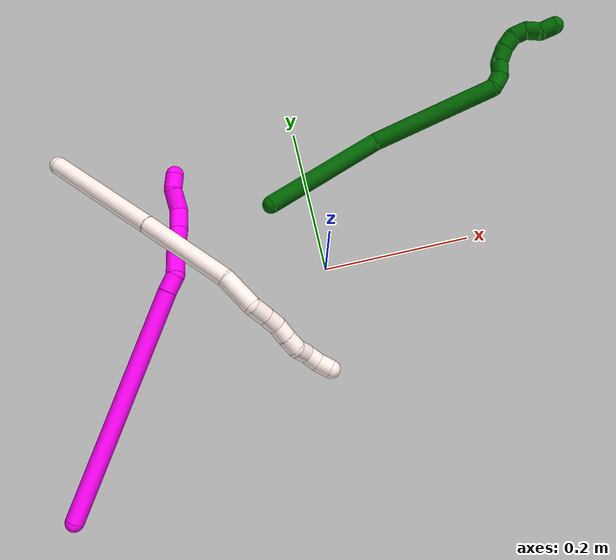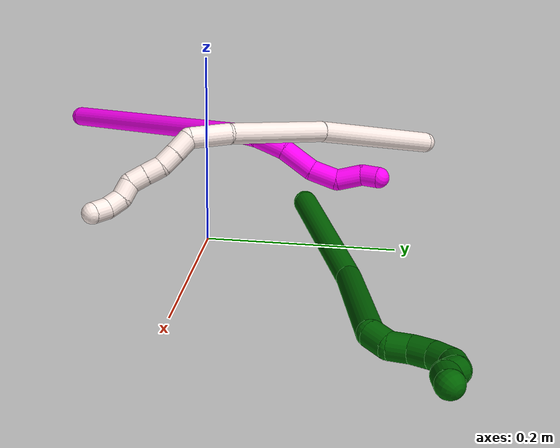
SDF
<sdf version="1.7">
 <world name="default">
  <model name="6">
   <static>0</static>
   <link name="6">
    <collision name="collision-cylinder-e_1_1_4">
     <pose>0.023811 0.020303 0.080894 -0.245907 0.278091 -0.034585</pose>
     <geometry><cylinder><radius>0.0125</radius><length>0.173471</length></cylinder></geometry>
     <surface>
      <friction><ode><mu>1.16</mu><mu2>1.16</mu2><slip1>0</slip1><slip2>0</slip2></ode></friction>
      <contact><ode><kp>1e+06</kp><kd>1</kd><max_vel>0</max_vel><min_depth>0.001</min_depth></ode></contact>
     </surface>
    </collision>
    <visual name="visual-cylinder-e_1_1_4">
     <pose>0.023811 0.020303 0.080894 -0.245907 0.278091 -0.034585</pose>
     <geometry><cylinder><radius>0.0125</radius><length>0.173471</length></cylinder></geometry>
     <material><ambient>0 0.392157 0.003922 1</ambient></material>
    </visual>
    <collision name="collision-cylinder-e_2_4_5">
     <pose>0.097485 0.061543 0.234028 -0.282084 0.585445 -0.085531</pose>
     <geometry><cylinder><radius>0.0125</radius><length>0.18048</length></cylinder></geometry>
     <surface>
      <friction><ode><mu>1.16</mu><mu2>1.16</mu2><slip1>0</slip1><slip2>0</slip2></ode></friction>
      <contact><ode><kp>1e+06</kp><kd>1</kd><max_vel>0</max_vel><min_depth>0.001</min_depth></ode></contact>
     </surface>
    </collision>
    <visual name="visual-cylinder-e_2_4_5">
     <pose>0.097485 0.061543 0.234028 -0.282084 0.585445 -0.085531</pose>
     <geometry><cylinder><radius>0.0125</radius><length>0.18048</length></cylinder></geometry>
     <material><ambient>0 0.392157 0.003922 1</ambient></material>
    </visual>
    <collision name="collision-cylinder-e_3_5_6">
     <pose>0.147194 0.081242 0.317117 0.113418 -0.014224 -0.000808</pose>
     <geometry><cylinder><radius>0.0125</radius><length>0.021842</length></cylinder></geometry>
     <surface>
      <friction><ode><mu>1.16</mu><mu2>1.16</mu2><slip1>0</slip1><slip2>0</slip2></ode></friction>
      <contact><ode><kp>1e+06</kp><kd>1</kd><max_vel>0</max_vel><min_depth>0.001</min_depth></ode></contact>
     </surface>
    </collision>
    <visual name="visual-cylinder-e_3_5_6">
     <pose>0.147194 0.081242 0.317117 0.113418 -0.014224 -0.000808</pose>
     <geometry><cylinder><radius>0.0125</radius><length>0.021842</length></cylinder></geometry>
     <material><ambient>0 0.392157 0.003922 1</ambient></material>
    </visual>
    <collision name="collision-cylinder-e_4_6_7">
     <pose>0.145032 0.074219 0.335958 0.626827 -0.200643 -0.065223</pose>
     <geometry><cylinder><radius>0.0125</radius><length>0.020138</length></cylinder></geometry>
     <surface>
      <friction><ode><mu>1.16</mu><mu2>1.16</mu2><slip1>0</slip1><slip2>0</slip2></ode></friction>
      <contact><ode><kp>1e+06</kp><kd>1</kd><max_vel>0</max_vel><min_depth>0.001</min_depth></ode></contact>
     </surface>
    </collision>
    <visual name="visual-cylinder-e_4_6_7">
     <pose>0.145032 0.074219 0.335958 0.626827 -0.200643 -0.065223</pose>
     <geometry><cylinder><radius>0.0125</radius><length>0.020138</length></cylinder></geometry>
     <material><ambient>0 0.392157 0.003922 1</ambient></material>
    </visual>
    <collision name="collision-cylinder-e_5_7_8">
     <pose>0.143718 0.064379 0.354074 0.380731 0.063447 0.01223</pose>
     <geometry><cylinder><radius>0.0125</radius><length>0.021856</length></cylinder></geometry>
     <surface>
      <friction><ode><mu>1.16</mu><mu2>1.16</mu2><slip1>0</slip1><slip2>0</slip2></ode></friction>
      <contact><ode><kp>1e+06</kp><kd>1</kd><max_vel>0</max_vel><min_depth>0.001</min_depth></ode></contact>
     </surface>
    </collision>
    <visual name="visual-cylinder-e_5_7_8">
     <pose>0.143718 0.064379 0.354074 0.380731 0.063447 0.01223</pose>
     <geometry><cylinder><radius>0.0125</radius><length>0.021856</length></cylinder></geometry>
     <material><ambient>0 0.392157 0.003922 1</ambient></material>
    </visual>
    <collision name="collision-cylinder-e_6_8_9">
     <pose>0.146905 0.058362 0.374214 0.193692 0.239737 0.023402</pose>
     <geometry><cylinder><radius>0.0125</radius><length>0.021012</length></cylinder></geometry>
     <surface>
      <friction><ode><mu>1.16</mu><mu2>1.16</mu2><slip1>0</slip1><slip2>0</slip2></ode></friction>
      <contact><ode><kp>1e+06</kp><kd>1</kd><max_vel>0</max_vel><min_depth>0.001</min_depth></ode></contact>
     </surface>
    </collision>
    <visual name="visual-cylinder-e_6_8_9">
     <pose>0.146905 0.058362 0.374214 0.193692 0.239737 0.023402</pose>
     <geometry><cylinder><radius>0.0125</radius><length>0.021012</length></cylinder></geometry>
     <material><ambient>0 0.392157 0.003922 1</ambient></material>
    </visual>
    <collision name="collision-cylinder-e_7_9_10">
     <pose>0.155359 0.058669 0.392088 -0.281392 0.629515 -0.09216</pose>
     <geometry><cylinder><radius>0.0125</radius><length>0.020244</length></cylinder></geometry>
     <surface>
      <friction><ode><mu>1.16</mu><mu2>1.16</mu2><slip1>0</slip1><slip2>0</slip2></ode></friction>
      <contact><ode><kp>1e+06</kp><kd>1</kd><max_vel>0</max_vel><min_depth>0.001</min_depth></ode></contact>
     </surface>
    </collision>
    <visual name="visual-cylinder-e_7_9_10">
     <pose>0.155359 0.058669 0.392088 -0.281392 0.629515 -0.09216</pose>
     <geometry><cylinder><radius>0.0125</radius><length>0.020244</length></cylinder></geometry>
     <material><ambient>0 0.392157 0.003922 1</ambient></material>
    </visual>
    <collision name="collision-cylinder-e_8_10_11">
     <pose>0.169281 0.066567 0.403497 -1.00792 0.87488 -0.504784</pose>
     <geometry><cylinder><radius>0.0125</radius><length>0.020752</length></cylinder></geometry>
     <surface>
      <friction><ode><mu>1.16</mu><mu2>1.16</mu2><slip1>0</slip1><slip2>0</slip2></ode></friction>
      <contact><ode><kp>1e+06</kp><kd>1</kd><max_vel>0</max_vel><min_depth>0.001</min_depth></ode></contact>
     </surface>
    </collision>
    <visual name="visual-cylinder-e_8_10_11">
     <pose>0.169281 0.066567 0.403497 -1.00792 0.87488 -0.504784</pose>
     <geometry><cylinder><radius>0.0125</radius><length>0.020752</length></cylinder></geometry>
     <material><ambient>0 0.392157 0.003922 1</ambient></material>
    </visual>
    <collision name="collision-cylinder-e_9_11_2">
     <pose>0.182895 0.07468 0.415044 -0.301634 0.593532 -0.092877</pose>
     <geometry><cylinder><radius>0.0125</radius><length>0.020207</length></cylinder></geometry>
     <surface>
      <friction><ode><mu>1.16</mu><mu2>1.16</mu2><slip1>0</slip1><slip2>0</slip2></ode></friction>
      <contact><ode><kp>1e+06</kp><kd>1</kd><max_vel>0</max_vel><min_depth>0.001</min_depth></ode></contact>
     </surface>
    </collision>
    <visual name="visual-cylinder-e_9_11_2">
     <pose>0.182895 0.07468 0.415044 -0.301634 0.593532 -0.092877</pose>
     <geometry><cylinder><radius>0.0125</radius><length>0.020207</length></cylinder></geometry>
     <material><ambient>0 0.392157 0.003922 1</ambient></material>
    </visual>
    <collision name="collision-sphere-2">
     <pose>0.188546 0.077169 0.423041 0 -0 0</pose>
     <geometry><sphere><radius>0.0125</radius></sphere></geometry>
     <surface>
      <friction><ode><mu>1.16</mu><mu2>1.16</mu2><slip1>0</slip1><slip2>0</slip2></ode></friction>
      <contact><ode><kp>1e+06</kp><kd>1</kd><max_vel>0</max_vel><min_depth>0.001</min_depth></ode></contact>
     </surface>
    </collision>
    <visual name="visual-sphere-2">
     <pose>0.188546 0.077169 0.423041 0 -0 0</pose>
     <geometry><sphere><radius>0.0125</radius></sphere></geometry>
     <material><ambient>0 0.392157 0.003922 1</ambient></material>
    </visual>
    <collision name="collision-sphere-11">
     <pose>0.177245 0.072192 0.407047 0 -0 0</pose>
     <geometry><sphere><radius>0.0125</radius></sphere></geometry>
     <surface>
      <friction><ode><mu>1.16</mu><mu2>1.16</mu2><slip1>0</slip1><slip2>0</slip2></ode></friction>
      <contact><ode><kp>1e+06</kp><kd>1</kd><max_vel>0</max_vel><min_depth>0.001</min_depth></ode></contact>
     </surface>
    </collision>
    <visual name="visual-sphere-11">
     <pose>0.177245 0.072192 0.407047 0 -0 0</pose>
     <geometry><sphere><radius>0.0125</radius></sphere></geometry>
     <material><ambient>0 0.392157 0.003922 1</ambient></material>
    </visual>
    <collision name="collision-sphere-10">
     <pose>0.161318 0.060941 0.399948 0 -0 0</pose>
     <geometry><sphere><radius>0.0125</radius></sphere></geometry>
     <surface>
      <friction><ode><mu>1.16</mu><mu2>1.16</mu2><slip1>0</slip1><slip2>0</slip2></ode></friction>
      <contact><ode><kp>1e+06</kp><kd>1</kd><max_vel>0</max_vel><min_depth>0.001</min_depth></ode></contact>
     </surface>
    </collision>
    <visual name="visual-sphere-10">
     <pose>0.161318 0.060941 0.399948 0 -0 0</pose>
     <geometry><sphere><radius>0.0125</radius></sphere></geometry>
     <material><ambient>0 0.392157 0.003922 1</ambient></material>
    </visual>
    <collision name="collision-sphere-9">
     <pose>0.1494 0.056397 0.384228 0 -0 0</pose>
     <geometry><sphere><radius>0.0125</radius></sphere></geometry>
     <surface>
      <friction><ode><mu>1.16</mu><mu2>1.16</mu2><slip1>0</slip1><slip2>0</slip2></ode></friction>
      <contact><ode><kp>1e+06</kp><kd>1</kd><max_vel>0</max_vel><min_depth>0.001</min_depth></ode></contact>
     </surface>
    </collision>
    <visual name="visual-sphere-9">
     <pose>0.1494 0.056397 0.384228 0 -0 0</pose>
     <geometry><sphere><radius>0.0125</radius></sphere></geometry>
     <material><ambient>0 0.392157 0.003922 1</ambient></material>
    </visual>
    <collision name="collision-sphere-4">
     <pose>0.047621 0.040607 0.161789 0 -0 0</pose>
     <geometry><sphere><radius>0.0125</radius></sphere></geometry>
     <surface>
      <friction><ode><mu>1.16</mu><mu2>1.16</mu2><slip1>0</slip1><slip2>0</slip2></ode></friction>
      <contact><ode><kp>1e+06</kp><kd>1</kd><max_vel>0</max_vel><min_depth>0.001</min_depth></ode></contact>
     </surface>
    </collision>
    <visual name="visual-sphere-4">
     <pose>0.047621 0.040607 0.161789 0 -0 0</pose>
     <geometry><sphere><radius>0.0125</radius></sphere></geometry>
     <material><ambient>0 0.392157 0.003922 1</ambient></material>
    </visual>
    <collision name="collision-sphere-1">
     <geometry><sphere><radius>0.0125</radius></sphere></geometry>
     <surface>
      <friction><ode><mu>1.16</mu><mu2>1.16</mu2><slip1>0</slip1><slip2>0</slip2></ode></friction>
      <contact><ode><kp>1e+06</kp><kd>1</kd><max_vel>0</max_vel><min_depth>0.001</min_depth></ode></contact>
     </surface>
    </collision>
    <visual name="visual-sphere-1">
     <geometry><sphere><radius>0.0125</radius></sphere></geometry>
     <material><ambient>0 0.392157 0.003922 1</ambient></material>
    </visual>
    <collision name="collision-sphere-8">
     <pose>0.144411 0.060326 0.364199 0 -0 0</pose>
     <geometry><sphere><radius>0.0125</radius></sphere></geometry>
     <surface>
      <friction><ode><mu>1.16</mu><mu2>1.16</mu2><slip1>0</slip1><slip2>0</slip2></ode></friction>
      <contact><ode><kp>1e+06</kp><kd>1</kd><max_vel>0</max_vel><min_depth>0.001</min_depth></ode></contact>
     </surface>
    </collision>
    <visual name="visual-sphere-8">
     <pose>0.144411 0.060326 0.364199 0 -0 0</pose>
     <geometry><sphere><radius>0.0125</radius></sphere></geometry>
     <material><ambient>0 0.392157 0.003922 1</ambient></material>
    </visual>
    <collision name="collision-sphere-5">
     <pose>0.147349 0.082478 0.306267 0 -0 0</pose>
     <geometry><sphere><radius>0.0125</radius></sphere></geometry>
     <surface>
      <friction><ode><mu>1.16</mu><mu2>1.16</mu2><slip1>0</slip1><slip2>0</slip2></ode></friction>
      <contact><ode><kp>1e+06</kp><kd>1</kd><max_vel>0</max_vel><min_depth>0.001</min_depth></ode></contact>
     </surface>
    </collision>
    <visual name="visual-sphere-5">
     <pose>0.147349 0.082478 0.306267 0 -0 0</pose>
     <geometry><sphere><radius>0.0125</radius></sphere></geometry>
     <material><ambient>0 0.392157 0.003922 1</ambient></material>
    </visual>
    <collision name="collision-sphere-6">
     <pose>0.147038 0.080007 0.327967 0 -0 0</pose>
     <geometry><sphere><radius>0.0125</radius></sphere></geometry>
     <surface>
      <friction><ode><mu>1.16</mu><mu2>1.16</mu2><slip1>0</slip1><slip2>0</slip2></ode></friction>
      <contact><ode><kp>1e+06</kp><kd>1</kd><max_vel>0</max_vel><min_depth>0.001</min_depth></ode></contact>
     </surface>
    </collision>
    <visual name="visual-sphere-6">
     <pose>0.147038 0.080007 0.327967 0 -0 0</pose>
     <geometry><sphere><radius>0.0125</radius></sphere></geometry>
     <material><ambient>0 0.392157 0.003922 1</ambient></material>
    </visual>
    <collision name="collision-sphere-7">
     <pose>0.143025 0.068431 0.343949 0 -0 0</pose>
     <geometry><sphere><radius>0.0125</radius></sphere></geometry>
     <surface>
      <friction><ode><mu>1.16</mu><mu2>1.16</mu2><slip1>0</slip1><slip2>0</slip2></ode></friction>
      <contact><ode><kp>1e+06</kp><kd>1</kd><max_vel>0</max_vel><min_depth>0.001</min_depth></ode></contact>
     </surface>
    </collision>
    <visual name="visual-sphere-7">
     <pose>0.143025 0.068431 0.343949 0 -0 0</pose>
     <geometry><sphere><radius>0.0125</radius></sphere></geometry>
     <material><ambient>0 0.392157 0.003922 1</ambient></material>
    </visual>
    <inertial>
     <pose>0.088883 0.049219 0.220521 0 -0 0</pose>
     <mass>0.5</mass>
     <inertia>
      <ixx>0.000811</ixx>
      <ixy>0</ixy>
      <ixz>0</ixz>
      <iyy>0.000877</iyy>
      <iyz>0</iyz>
      <izz>-0.000584</izz>
     </inertia>
    </inertial>
   </link>
   <pose>-0.05386 0.099091 0.028046 -1.88084 -0.918458 -0.599707</pose>
  </model>
  <model name="10">
   <static>0</static>
   <link name="10">
    <collision name="collision-cylinder-e_1_1_4">
     <pose>-0.004729 0.099603 -0.121575 -2.45521 -0.030083 0.084145</pose>
     <geometry><cylinder><radius>0.0125</radius><length>0.314475</length></cylinder></geometry>
     <surface>
      <friction><ode><mu>1.16</mu><mu2>1.16</mu2><slip1>0</slip1><slip2>0</slip2></ode></friction>
      <contact><ode><kp>1e+06</kp><kd>1</kd><max_vel>0</max_vel><min_depth>0.001</min_depth></ode></contact>
     </surface>
    </collision>
    <visual name="visual-cylinder-e_1_1_4">
     <pose>-0.004729 0.099603 -0.121575 -2.45521 -0.030083 0.084145</pose>
     <geometry><cylinder><radius>0.0125</radius><length>0.314475</length></cylinder></geometry>
     <material><ambient>1 0 0.964706 1</ambient></material>
    </visual>
    <collision name="collision-cylinder-e_2_4_5">
     <pose>-0.01067 0.207299 -0.251686 -2.38283 -0.102606 0.25617</pose>
     <geometry><cylinder><radius>0.0125</radius><length>0.023649</length></cylinder></geometry>
     <surface>
      <friction><ode><mu>1.16</mu><mu2>1.16</mu2><slip1>0</slip1><slip2>0</slip2></ode></friction>
      <contact><ode><kp>1e+06</kp><kd>1</kd><max_vel>0</max_vel><min_depth>0.001</min_depth></ode></contact>
     </surface>
    </collision>
    <visual name="visual-cylinder-e_2_4_5">
     <pose>-0.01067 0.207299 -0.251686 -2.38283 -0.102606 0.25617</pose>
     <geometry><cylinder><radius>0.0125</radius><length>0.023649</length></cylinder></geometry>
     <material><ambient>1 0 0.964706 1</ambient></material>
    </visual>
    <collision name="collision-cylinder-e_3_5_6">
     <pose>-0.005616 0.231123 -0.26617 -1.9323 0.356609 -0.510265</pose>
     <geometry><cylinder><radius>0.0125</radius><length>0.035894</length></cylinder></geometry>
     <surface>
      <friction><ode><mu>1.16</mu><mu2>1.16</mu2><slip1>0</slip1><slip2>0</slip2></ode></friction>
      <contact><ode><kp>1e+06</kp><kd>1</kd><max_vel>0</max_vel><min_depth>0.001</min_depth></ode></contact>
     </surface>
    </collision>
    <visual name="visual-cylinder-e_3_5_6">
     <pose>-0.005616 0.231123 -0.26617 -1.9323 0.356609 -0.510265</pose>
     <geometry><cylinder><radius>0.0125</radius><length>0.035894</length></cylinder></geometry>
     <material><ambient>1 0 0.964706 1</ambient></material>
    </visual>
    <collision name="collision-cylinder-e_4_6_7">
     <pose>0.005855 0.266735 -0.275138 -1.72153 0.253333 -0.294163</pose>
     <geometry><cylinder><radius>0.0125</radius><length>0.041544</length></cylinder></geometry>
     <surface>
      <friction><ode><mu>1.16</mu><mu2>1.16</mu2><slip1>0</slip1><slip2>0</slip2></ode></friction>
      <contact><ode><kp>1e+06</kp><kd>1</kd><max_vel>0</max_vel><min_depth>0.001</min_depth></ode></contact>
     </surface>
    </collision>
    <visual name="visual-cylinder-e_4_6_7">
     <pose>0.005855 0.266735 -0.275138 -1.72153 0.253333 -0.294163</pose>
     <geometry><cylinder><radius>0.0125</radius><length>0.041544</length></cylinder></geometry>
     <material><ambient>1 0 0.964706 1</ambient></material>
    </visual>
    <collision name="collision-cylinder-e_5_7_8">
     <pose>0.016858 0.300586 -0.284597 -2.00269 0.36037 -0.554427</pose>
     <geometry><cylinder><radius>0.0125</radius><length>0.032878</length></cylinder></geometry>
     <surface>
      <friction><ode><mu>1.16</mu><mu2>1.16</mu2><slip1>0</slip1><slip2>0</slip2></ode></friction>
      <contact><ode><kp>1e+06</kp><kd>1</kd><max_vel>0</max_vel><min_depth>0.001</min_depth></ode></contact>
     </surface>
    </collision>
    <visual name="visual-cylinder-e_5_7_8">
     <pose>0.016858 0.300586 -0.284597 -2.00269 0.36037 -0.554427</pose>
     <geometry><cylinder><radius>0.0125</radius><length>0.032878</length></cylinder></geometry>
     <material><ambient>1 0 0.964706 1</ambient></material>
    </visual>
    <collision name="collision-cylinder-e_6_8_9">
     <pose>0.031379 0.321203 -0.301654 -2.5823 0.608357 -1.65973</pose>
     <geometry><cylinder><radius>0.0125</radius><length>0.03053</length></cylinder></geometry>
     <surface>
      <friction><ode><mu>1.16</mu><mu2>1.16</mu2><slip1>0</slip1><slip2>0</slip2></ode></friction>
      <contact><ode><kp>1e+06</kp><kd>1</kd><max_vel>0</max_vel><min_depth>0.001</min_depth></ode></contact>
     </surface>
    </collision>
    <visual name="visual-cylinder-e_6_8_9">
     <pose>0.031379 0.321203 -0.301654 -2.5823 0.608357 -1.65973</pose>
     <geometry><cylinder><radius>0.0125</radius><length>0.03053</length></cylinder></geometry>
     <material><ambient>1 0 0.964706 1</ambient></material>
    </visual>
    <collision name="collision-cylinder-e_7_9_2">
     <pose>0.042648 0.335437 -0.319091 -2.30287 0.244424 -0.537679</pose>
     <geometry><cylinder><radius>0.0125</radius><length>0.021029</length></cylinder></geometry>
     <surface>
      <friction><ode><mu>1.16</mu><mu2>1.16</mu2><slip1>0</slip1><slip2>0</slip2></ode></friction>
      <contact><ode><kp>1e+06</kp><kd>1</kd><max_vel>0</max_vel><min_depth>0.001</min_depth></ode></contact>
     </surface>
    </collision>
    <visual name="visual-cylinder-e_7_9_2">
     <pose>0.042648 0.335437 -0.319091 -2.30287 0.244424 -0.537679</pose>
     <geometry><cylinder><radius>0.0125</radius><length>0.021029</length></cylinder></geometry>
     <material><ambient>1 0 0.964706 1</ambient></material>
    </visual>
    <collision name="collision-sphere-2">
     <pose>0.045193 0.343026 -0.32591 0 -0 0</pose>
     <geometry><sphere><radius>0.0125</radius></sphere></geometry>
     <surface>
      <friction><ode><mu>1.16</mu><mu2>1.16</mu2><slip1>0</slip1><slip2>0</slip2></ode></friction>
      <contact><ode><kp>1e+06</kp><kd>1</kd><max_vel>0</max_vel><min_depth>0.001</min_depth></ode></contact>
     </surface>
    </collision>
    <visual name="visual-sphere-2">
     <pose>0.045193 0.343026 -0.32591 0 -0 0</pose>
     <geometry><sphere><radius>0.0125</radius></sphere></geometry>
     <material><ambient>1 0 0.964706 1</ambient></material>
    </visual>
    <collision name="collision-sphere-9">
     <pose>0.040104 0.327849 -0.312272 0 -0 0</pose>
     <geometry><sphere><radius>0.0125</radius></sphere></geometry>
     <surface>
      <friction><ode><mu>1.16</mu><mu2>1.16</mu2><slip1>0</slip1><slip2>0</slip2></ode></friction>
      <contact><ode><kp>1e+06</kp><kd>1</kd><max_vel>0</max_vel><min_depth>0.001</min_depth></ode></contact>
     </surface>
    </collision>
    <visual name="visual-sphere-9">
     <pose>0.040104 0.327849 -0.312272 0 -0 0</pose>
     <geometry><sphere><radius>0.0125</radius></sphere></geometry>
     <material><ambient>1 0 0.964706 1</ambient></material>
    </visual>
    <collision name="collision-sphere-4">
     <pose>-0.009459 0.199206 -0.24315 0 -0 0</pose>
     <geometry><sphere><radius>0.0125</radius></sphere></geometry>
     <surface>
      <friction><ode><mu>1.16</mu><mu2>1.16</mu2><slip1>0</slip1><slip2>0</slip2></ode></friction>
      <contact><ode><kp>1e+06</kp><kd>1</kd><max_vel>0</max_vel><min_depth>0.001</min_depth></ode></contact>
     </surface>
    </collision>
    <visual name="visual-sphere-4">
     <pose>-0.009459 0.199206 -0.24315 0 -0 0</pose>
     <geometry><sphere><radius>0.0125</radius></sphere></geometry>
     <material><ambient>1 0 0.964706 1</ambient></material>
    </visual>
    <collision name="collision-sphere-1">
     <geometry><sphere><radius>0.0125</radius></sphere></geometry>
     <surface>
      <friction><ode><mu>1.16</mu><mu2>1.16</mu2><slip1>0</slip1><slip2>0</slip2></ode></friction>
      <contact><ode><kp>1e+06</kp><kd>1</kd><max_vel>0</max_vel><min_depth>0.001</min_depth></ode></contact>
     </surface>
    </collision>
    <visual name="visual-sphere-1">
     <geometry><sphere><radius>0.0125</radius></sphere></geometry>
     <material><ambient>1 0 0.964706 1</ambient></material>
    </visual>
    <collision name="collision-sphere-8">
     <pose>0.022655 0.314557 -0.291037 0 -0 0</pose>
     <geometry><sphere><radius>0.0125</radius></sphere></geometry>
     <surface>
      <friction><ode><mu>1.16</mu><mu2>1.16</mu2><slip1>0</slip1><slip2>0</slip2></ode></friction>
      <contact><ode><kp>1e+06</kp><kd>1</kd><max_vel>0</max_vel><min_depth>0.001</min_depth></ode></contact>
     </surface>
    </collision>
    <visual name="visual-sphere-8">
     <pose>0.022655 0.314557 -0.291037 0 -0 0</pose>
     <geometry><sphere><radius>0.0125</radius></sphere></geometry>
     <material><ambient>1 0 0.964706 1</ambient></material>
    </visual>
    <collision name="collision-sphere-5">
     <pose>-0.011881 0.215392 -0.260222 0 -0 0</pose>
     <geometry><sphere><radius>0.0125</radius></sphere></geometry>
     <surface>
      <friction><ode><mu>1.16</mu><mu2>1.16</mu2><slip1>0</slip1><slip2>0</slip2></ode></friction>
      <contact><ode><kp>1e+06</kp><kd>1</kd><max_vel>0</max_vel><min_depth>0.001</min_depth></ode></contact>
     </surface>
    </collision>
    <visual name="visual-sphere-5">
     <pose>-0.011881 0.215392 -0.260222 0 -0 0</pose>
     <geometry><sphere><radius>0.0125</radius></sphere></geometry>
     <material><ambient>1 0 0.964706 1</ambient></material>
    </visual>
    <collision name="collision-sphere-6">
     <pose>0.000649 0.246854 -0.272119 0 -0 0</pose>
     <geometry><sphere><radius>0.0125</radius></sphere></geometry>
     <surface>
      <friction><ode><mu>1.16</mu><mu2>1.16</mu2><slip1>0</slip1><slip2>0</slip2></ode></friction>
      <contact><ode><kp>1e+06</kp><kd>1</kd><max_vel>0</max_vel><min_depth>0.001</min_depth></ode></contact>
     </surface>
    </collision>
    <visual name="visual-sphere-6">
     <pose>0.000649 0.246854 -0.272119 0 -0 0</pose>
     <geometry><sphere><radius>0.0125</radius></sphere></geometry>
     <material><ambient>1 0 0.964706 1</ambient></material>
    </visual>
    <collision name="collision-sphere-7">
     <pose>0.011062 0.286615 -0.278158 0 -0 0</pose>
     <geometry><sphere><radius>0.0125</radius></sphere></geometry>
     <surface>
      <friction><ode><mu>1.16</mu><mu2>1.16</mu2><slip1>0</slip1><slip2>0</slip2></ode></friction>
      <contact><ode><kp>1e+06</kp><kd>1</kd><max_vel>0</max_vel><min_depth>0.001</min_depth></ode></contact>
     </surface>
    </collision>
    <visual name="visual-sphere-7">
     <pose>0.011062 0.286615 -0.278158 0 -0 0</pose>
     <geometry><sphere><radius>0.0125</radius></sphere></geometry>
     <material><ambient>1 0 0.964706 1</ambient></material>
    </visual>
    <inertial>
     <pose>0.001422 0.164691 -0.180891 0 -0 0</pose>
     <mass>0.5</mass>
     <inertia>
      <ixx>0.002824</ixx>
      <ixy>0</ixy>
      <ixz>0</ixz>
      <iyy>-0.00177</iyy>
      <iyz>0</iyz>
      <izz>-0.001624</izz>
     </inertia>
    </inertial>
   </link>
   <pose>-0.387738 -0.251552 0.011777 -2.39087 -0.065747 2.58176</pose>
  </model>
  <model name="11">
   <static>0</static>
   <link name="11">
    <collision name="collision-cylinder-e_1_1_4">
     <pose>0.001838 -0.083266 0.017846 1.35966 0.021575 0.017441</pose>
     <geometry><cylinder><radius>0.0125</radius><length>0.170354</length></cylinder></geometry>
     <surface>
      <friction><ode><mu>1.16</mu><mu2>1.16</mu2><slip1>0</slip1><slip2>0</slip2></ode></friction>
      <contact><ode><kp>1e+06</kp><kd>1</kd><max_vel>0</max_vel><min_depth>0.001</min_depth></ode></contact>
     </surface>
    </collision>
    <visual name="visual-cylinder-e_1_1_4">
     <pose>0.001838 -0.083266 0.017846 1.35966 0.021575 0.017441</pose>
     <geometry><cylinder><radius>0.0125</radius><length>0.170354</length></cylinder></geometry>
     <material><ambient>1 0.933333 0.909804 1</ambient></material>
    </visual>
    <collision name="collision-cylinder-e_2_4_5">
     <pose>0.011594 -0.230436 0.051622 1.3265 0.119667 0.093542</pose>
     <geometry><cylinder><radius>0.0125</radius><length>0.132666</length></cylinder></geometry>
     <surface>
      <friction><ode><mu>1.16</mu><mu2>1.16</mu2><slip1>0</slip1><slip2>0</slip2></ode></friction>
      <contact><ode><kp>1e+06</kp><kd>1</kd><max_vel>0</max_vel><min_depth>0.001</min_depth></ode></contact>
     </surface>
    </collision>
    <visual name="visual-cylinder-e_2_4_5">
     <pose>0.011594 -0.230436 0.051622 1.3265 0.119667 0.093542</pose>
     <geometry><cylinder><radius>0.0125</radius><length>0.132666</length></cylinder></geometry>
     <material><ambient>1 0.933333 0.909804 1</ambient></material>
    </visual>
    <collision name="collision-cylinder-e_3_5_6">
     <pose>0.026887 -0.318152 0.069679 1.48171 0.299164 0.273967</pose>
     <geometry><cylinder><radius>0.0125</radius><length>0.050038</length></cylinder></geometry>
     <surface>
      <friction><ode><mu>1.16</mu><mu2>1.16</mu2><slip1>0</slip1><slip2>0</slip2></ode></friction>
      <contact><ode><kp>1e+06</kp><kd>1</kd><max_vel>0</max_vel><min_depth>0.001</min_depth></ode></contact>
     </surface>
    </collision>
    <visual name="visual-cylinder-e_3_5_6">
     <pose>0.026887 -0.318152 0.069679 1.48171 0.299164 0.273967</pose>
     <geometry><cylinder><radius>0.0125</radius><length>0.050038</length></cylinder></geometry>
     <material><ambient>1 0.933333 0.909804 1</ambient></material>
    </visual>
    <collision name="collision-cylinder-e_4_6_7">
     <pose>0.043468 -0.348537 0.076311 0.969848 0.857455 0.472659</pose>
     <geometry><cylinder><radius>0.0125</radius><length>0.024353</length></cylinder></geometry>
     <surface>
      <friction><ode><mu>1.16</mu><mu2>1.16</mu2><slip1>0</slip1><slip2>0</slip2></ode></friction>
      <contact><ode><kp>1e+06</kp><kd>1</kd><max_vel>0</max_vel><min_depth>0.001</min_depth></ode></contact>
     </surface>
    </collision>
    <visual name="visual-cylinder-e_4_6_7">
     <pose>0.043468 -0.348537 0.076311 0.969848 0.857455 0.472659</pose>
     <geometry><cylinder><radius>0.0125</radius><length>0.024353</length></cylinder></geometry>
     <material><ambient>1 0.933333 0.909804 1</ambient></material>
    </visual>
    <collision name="collision-cylinder-e_5_7_8">
     <pose>0.060783 -0.361376 0.084532 1.0356 0.838677 0.497361</pose>
     <geometry><cylinder><radius>0.0125</radius><length>0.0218</length></cylinder></geometry>
     <surface>
      <friction><ode><mu>1.16</mu><mu2>1.16</mu2><slip1>0</slip1><slip2>0</slip2></ode></friction>
      <contact><ode><kp>1e+06</kp><kd>1</kd><max_vel>0</max_vel><min_depth>0.001</min_depth></ode></contact>
     </surface>
    </collision>
    <visual name="visual-cylinder-e_5_7_8">
     <pose>0.060783 -0.361376 0.084532 1.0356 0.838677 0.497361</pose>
     <geometry><cylinder><radius>0.0125</radius><length>0.0218</length></cylinder></geometry>
     <material><ambient>1 0.933333 0.909804 1</ambient></material>
    </visual>
    <collision name="collision-cylinder-e_6_8_9">
     <pose>0.075544 -0.37545 0.089384 1.42633 0.700708 0.612345</pose>
     <geometry><cylinder><radius>0.0125</radius><length>0.020641</length></cylinder></geometry>
     <surface>
      <friction><ode><mu>1.16</mu><mu2>1.16</mu2><slip1>0</slip1><slip2>0</slip2></ode></friction>
      <contact><ode><kp>1e+06</kp><kd>1</kd><max_vel>0</max_vel><min_depth>0.001</min_depth></ode></contact>
     </surface>
    </collision>
    <visual name="visual-cylinder-e_6_8_9">
     <pose>0.075544 -0.37545 0.089384 1.42633 0.700708 0.612345</pose>
     <geometry><cylinder><radius>0.0125</radius><length>0.020641</length></cylinder></geometry>
     <material><ambient>1 0.933333 0.909804 1</ambient></material>
    </visual>
    <collision name="collision-cylinder-e_7_9_10">
     <pose>0.088623 -0.39078 0.092187 1.35272 0.695006 0.565851</pose>
     <geometry><cylinder><radius>0.0125</radius><length>0.020065</length></cylinder></geometry>
     <surface>
      <friction><ode><mu>1.16</mu><mu2>1.16</mu2><slip1>0</slip1><slip2>0</slip2></ode></friction>
      <contact><ode><kp>1e+06</kp><kd>1</kd><max_vel>0</max_vel><min_depth>0.001</min_depth></ode></contact>
     </surface>
    </collision>
    <visual name="visual-cylinder-e_7_9_10">
     <pose>0.088623 -0.39078 0.092187 1.35272 0.695006 0.565851</pose>
     <geometry><cylinder><radius>0.0125</radius><length>0.020065</length></cylinder></geometry>
     <material><ambient>1 0.933333 0.909804 1</ambient></material>
    </visual>
    <collision name="collision-cylinder-e_8_10_11">
     <pose>0.103163 -0.401628 0.098734 0.598143 0.941701 0.311352</pose>
     <geometry><cylinder><radius>0.0125</radius><length>0.020073</length></cylinder></geometry>
     <surface>
      <friction><ode><mu>1.16</mu><mu2>1.16</mu2><slip1>0</slip1><slip2>0</slip2></ode></friction>
      <contact><ode><kp>1e+06</kp><kd>1</kd><max_vel>0</max_vel><min_depth>0.001</min_depth></ode></contact>
     </surface>
    </collision>
    <visual name="visual-cylinder-e_8_10_11">
     <pose>0.103163 -0.401628 0.098734 0.598143 0.941701 0.311352</pose>
     <geometry><cylinder><radius>0.0125</radius><length>0.020073</length></cylinder></geometry>
     <material><ambient>1 0.933333 0.909804 1</ambient></material>
    </visual>
    <collision name="collision-cylinder-e_9_11_12">
     <pose>0.117194 -0.412235 0.107085 1.12605 0.632793 0.407548</pose>
     <geometry><cylinder><radius>0.0125</radius><length>0.020006</length></cylinder></geometry>
     <surface>
      <friction><ode><mu>1.16</mu><mu2>1.16</mu2><slip1>0</slip1><slip2>0</slip2></ode></friction>
      <contact><ode><kp>1e+06</kp><kd>1</kd><max_vel>0</max_vel><min_depth>0.001</min_depth></ode></contact>
     </surface>
    </collision>
    <visual name="visual-cylinder-e_9_11_12">
     <pose>0.117194 -0.412235 0.107085 1.12605 0.632793 0.407548</pose>
     <geometry><cylinder><radius>0.0125</radius><length>0.020006</length></cylinder></geometry>
     <material><ambient>1 0.933333 0.909804 1</ambient></material>
    </visual>
    <collision name="collision-cylinder-e_10_12_2">
     <pose>0.125551 -0.428279 0.114714 1.12762 0.246545 0.156359</pose>
     <geometry><cylinder><radius>0.0125</radius><length>0.020003</length></cylinder></geometry>
     <surface>
      <friction><ode><mu>1.16</mu><mu2>1.16</mu2><slip1>0</slip1><slip2>0</slip2></ode></friction>
      <contact><ode><kp>1e+06</kp><kd>1</kd><max_vel>0</max_vel><min_depth>0.001</min_depth></ode></contact>
     </surface>
    </collision>
    <visual name="visual-cylinder-e_10_12_2">
     <pose>0.125551 -0.428279 0.114714 1.12762 0.246545 0.156359</pose>
     <geometry><cylinder><radius>0.0125</radius><length>0.020003</length></cylinder></geometry>
     <material><ambient>1 0.933333 0.909804 1</ambient></material>
    </visual>
    <collision name="collision-sphere-2">
     <pose>0.127991 -0.437041 0.118874 0 -0 0</pose>
     <geometry><sphere><radius>0.0125</radius></sphere></geometry>
     <surface>
      <friction><ode><mu>1.16</mu><mu2>1.16</mu2><slip1>0</slip1><slip2>0</slip2></ode></friction>
      <contact><ode><kp>1e+06</kp><kd>1</kd><max_vel>0</max_vel><min_depth>0.001</min_depth></ode></contact>
     </surface>
    </collision>
    <visual name="visual-sphere-2">
     <pose>0.127991 -0.437041 0.118874 0 -0 0</pose>
     <geometry><sphere><radius>0.0125</radius></sphere></geometry>
     <material><ambient>1 0.933333 0.909804 1</ambient></material>
    </visual>
    <collision name="collision-sphere-12">
     <pose>0.12311 -0.419517 0.110555 0 -0 0</pose>
     <geometry><sphere><radius>0.0125</radius></sphere></geometry>
     <surface>
      <friction><ode><mu>1.16</mu><mu2>1.16</mu2><slip1>0</slip1><slip2>0</slip2></ode></friction>
      <contact><ode><kp>1e+06</kp><kd>1</kd><max_vel>0</max_vel><min_depth>0.001</min_depth></ode></contact>
     </surface>
    </collision>
    <visual name="visual-sphere-12">
     <pose>0.12311 -0.419517 0.110555 0 -0 0</pose>
     <geometry><sphere><radius>0.0125</radius></sphere></geometry>
     <material><ambient>1 0.933333 0.909804 1</ambient></material>
    </visual>
    <collision name="collision-sphere-11">
     <pose>0.111278 -0.404954 0.103615 0 -0 0</pose>
     <geometry><sphere><radius>0.0125</radius></sphere></geometry>
     <surface>
      <friction><ode><mu>1.16</mu><mu2>1.16</mu2><slip1>0</slip1><slip2>0</slip2></ode></friction>
      <contact><ode><kp>1e+06</kp><kd>1</kd><max_vel>0</max_vel><min_depth>0.001</min_depth></ode></contact>
     </surface>
    </collision>
    <visual name="visual-sphere-11">
     <pose>0.111278 -0.404954 0.103615 0 -0 0</pose>
     <geometry><sphere><radius>0.0125</radius></sphere></geometry>
     <material><ambient>1 0.933333 0.909804 1</ambient></material>
    </visual>
    <collision name="collision-sphere-10">
     <pose>0.095048 -0.398303 0.093854 0 -0 0</pose>
     <geometry><sphere><radius>0.0125</radius></sphere></geometry>
     <surface>
      <friction><ode><mu>1.16</mu><mu2>1.16</mu2><slip1>0</slip1><slip2>0</slip2></ode></friction>
      <contact><ode><kp>1e+06</kp><kd>1</kd><max_vel>0</max_vel><min_depth>0.001</min_depth></ode></contact>
     </surface>
    </collision>
    <visual name="visual-sphere-10">
     <pose>0.095048 -0.398303 0.093854 0 -0 0</pose>
     <geometry><sphere><radius>0.0125</radius></sphere></geometry>
     <material><ambient>1 0.933333 0.909804 1</ambient></material>
    </visual>
    <collision name="collision-sphere-9">
     <pose>0.082198 -0.383256 0.09052 0 -0 0</pose>
     <geometry><sphere><radius>0.0125</radius></sphere></geometry>
     <surface>
      <friction><ode><mu>1.16</mu><mu2>1.16</mu2><slip1>0</slip1><slip2>0</slip2></ode></friction>
      <contact><ode><kp>1e+06</kp><kd>1</kd><max_vel>0</max_vel><min_depth>0.001</min_depth></ode></contact>
     </surface>
    </collision>
    <visual name="visual-sphere-9">
     <pose>0.082198 -0.383256 0.09052 0 -0 0</pose>
     <geometry><sphere><radius>0.0125</radius></sphere></geometry>
     <material><ambient>1 0.933333 0.909804 1</ambient></material>
    </visual>
    <collision name="collision-sphere-4">
     <pose>0.003675 -0.166533 0.035693 0 -0 0</pose>
     <geometry><sphere><radius>0.0125</radius></sphere></geometry>
     <surface>
      <friction><ode><mu>1.16</mu><mu2>1.16</mu2><slip1>0</slip1><slip2>0</slip2></ode></friction>
      <contact><ode><kp>1e+06</kp><kd>1</kd><max_vel>0</max_vel><min_depth>0.001</min_depth></ode></contact>
     </surface>
    </collision>
    <visual name="visual-sphere-4">
     <pose>0.003675 -0.166533 0.035693 0 -0 0</pose>
     <geometry><sphere><radius>0.0125</radius></sphere></geometry>
     <material><ambient>1 0.933333 0.909804 1</ambient></material>
    </visual>
    <collision name="collision-sphere-1">
     <geometry><sphere><radius>0.0125</radius></sphere></geometry>
     <surface>
      <friction><ode><mu>1.16</mu><mu2>1.16</mu2><slip1>0</slip1><slip2>0</slip2></ode></friction>
      <contact><ode><kp>1e+06</kp><kd>1</kd><max_vel>0</max_vel><min_depth>0.001</min_depth></ode></contact>
     </surface>
    </collision>
    <visual name="visual-sphere-1">
     <geometry><sphere><radius>0.0125</radius></sphere></geometry>
     <material><ambient>1 0.933333 0.909804 1</ambient></material>
    </visual>
    <collision name="collision-sphere-8">
     <pose>0.06889 -0.367643 0.088248 0 -0 0</pose>
     <geometry><sphere><radius>0.0125</radius></sphere></geometry>
     <surface>
      <friction><ode><mu>1.16</mu><mu2>1.16</mu2><slip1>0</slip1><slip2>0</slip2></ode></friction>
      <contact><ode><kp>1e+06</kp><kd>1</kd><max_vel>0</max_vel><min_depth>0.001</min_depth></ode></contact>
     </surface>
    </collision>
    <visual name="visual-sphere-8">
     <pose>0.06889 -0.367643 0.088248 0 -0 0</pose>
     <geometry><sphere><radius>0.0125</radius></sphere></geometry>
     <material><ambient>1 0.933333 0.909804 1</ambient></material>
    </visual>
    <collision name="collision-sphere-5">
     <pose>0.019513 -0.294339 0.067552 0 -0 0</pose>
     <geometry><sphere><radius>0.0125</radius></sphere></geometry>
     <surface>
      <friction><ode><mu>1.16</mu><mu2>1.16</mu2><slip1>0</slip1><slip2>0</slip2></ode></friction>
      <contact><ode><kp>1e+06</kp><kd>1</kd><max_vel>0</max_vel><min_depth>0.001</min_depth></ode></contact>
     </surface>
    </collision>
    <visual name="visual-sphere-5">
     <pose>0.019513 -0.294339 0.067552 0 -0 0</pose>
     <geometry><sphere><radius>0.0125</radius></sphere></geometry>
     <material><ambient>1 0.933333 0.909804 1</ambient></material>
    </visual>
    <collision name="collision-sphere-6">
     <pose>0.03426 -0.341965 0.071806 0 -0 0</pose>
     <geometry><sphere><radius>0.0125</radius></sphere></geometry>
     <surface>
      <friction><ode><mu>1.16</mu><mu2>1.16</mu2><slip1>0</slip1><slip2>0</slip2></ode></friction>
      <contact><ode><kp>1e+06</kp><kd>1</kd><max_vel>0</max_vel><min_depth>0.001</min_depth></ode></contact>
     </surface>
    </collision>
    <visual name="visual-sphere-6">
     <pose>0.03426 -0.341965 0.071806 0 -0 0</pose>
     <geometry><sphere><radius>0.0125</radius></sphere></geometry>
     <material><ambient>1 0.933333 0.909804 1</ambient></material>
    </visual>
    <collision name="collision-sphere-7">
     <pose>0.052676 -0.355109 0.080817 0 -0 0</pose>
     <geometry><sphere><radius>0.0125</radius></sphere></geometry>
     <surface>
      <friction><ode><mu>1.16</mu><mu2>1.16</mu2><slip1>0</slip1><slip2>0</slip2></ode></friction>
      <contact><ode><kp>1e+06</kp><kd>1</kd><max_vel>0</max_vel><min_depth>0.001</min_depth></ode></contact>
     </surface>
    </collision>
    <visual name="visual-sphere-7">
     <pose>0.052676 -0.355109 0.080817 0 -0 0</pose>
     <geometry><sphere><radius>0.0125</radius></sphere></geometry>
     <material><ambient>1 0.933333 0.909804 1</ambient></material>
    </visual>
    <inertial>
     <pose>0.031689 -0.235016 0.05438 0 -0 0</pose>
     <mass>0.5</mass>
     <inertia>
      <ixx>0.000677</ixx>
      <ixy>0</ixy>
      <ixz>0</ixz>
      <iyy>0.000146</iyy>
      <iyz>0</iyz>
      <izz>0.000586</izz>
     </inertia>
    </inertial>
   </link>
   <pose>-0.329211 0.223725 0.016613 -2.13743 1.18885 -1.65992</pose>
  </model>
 </world>
</sdf>
